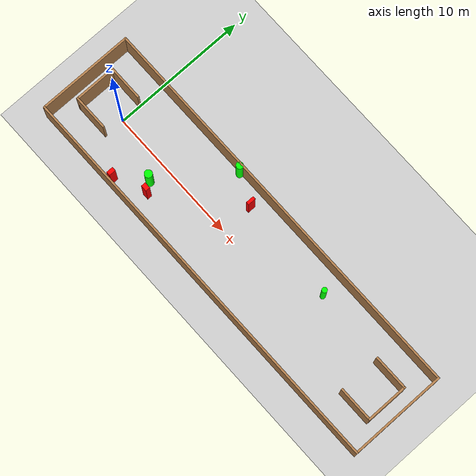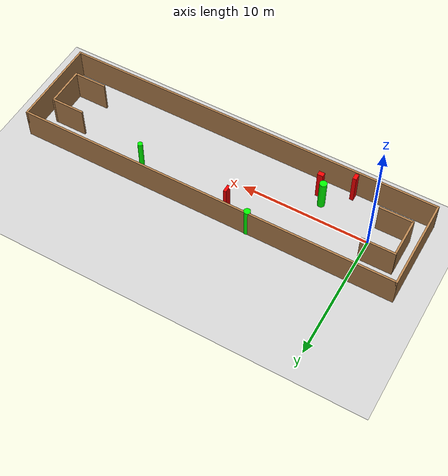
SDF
<sdf version="1.7">
 <world name="default">
  <light name="sun" type="directional">
   <pose>0 0 10 0 -0 0</pose>
   <diffuse>0.8 0.8 0.8 1</diffuse>
   <specular>0.2 0.2 0.2 1</specular>
   <attenuation>
    <range>1000</range>
    <constant>0.9</constant>
    <linear>0.01</linear>
    <quadratic>0.001</quadratic>
   </attenuation>
   <direction>-0.5 0.1 -0.9</direction>
   <spot><inner_angle>0</inner_angle><outer_angle>0</outer_angle><falloff>0</falloff></spot>
  </light>
  <model name="ground_plane">
   <static>1</static>
   <link name="link">
    <collision name="collision">
     <geometry><plane><normal>0 0 1</normal><size>100 100</size></plane></geometry>
     <surface>
      <contact><collide_bitmask>65535</collide_bitmask></contact>
      <friction><ode><mu>100</mu><mu2>50</mu2></ode></friction>
     </surface>
    </collision>
    <visual name="visual">
     <cast_shadows>0</cast_shadows>
     <geometry><plane><normal>0 0 1</normal><size>100 100</size></plane></geometry>
     <material>
      <script><uri>file://media/materials/scripts/gazebo.material</uri><name>Gazebo/Grey</name></script>
     </material>
    </visual>
   </link>
  </model>
  <gravity>0 0 -9.8</gravity>
  <magnetic_field>6e-06 2.3e-05 -4.2e-05</magnetic_field>
  <atmosphere type="adiabatic"/>
  <physics type="ode">
   <max_step_size>0.001</max_step_size>
   <real_time_factor>1</real_time_factor>
   <real_time_update_rate>1000</real_time_update_rate>
  </physics>
  <scene><ambient>0.4 0.4 0.4 1</ambient><background>0.7 0.7 0.7 1</background><shadows>1</shadows></scene>
  <spherical_coordinates>
   <surface_model>EARTH_WGS84</surface_model>
   <latitude_deg>0</latitude_deg>
   <longitude_deg>0</longitude_deg>
   <elevation>0</elevation>
   <heading_deg>0</heading_deg>
  </spherical_coordinates>
  <model name="my_base_walls">
   <link name="Wall_0">
    <collision name="Wall_0_Collision">
     <geometry><box><size>7.15 0.15 2.5</size></box></geometry>
     <pose>0 0 1.25 0 -0 0</pose>
    </collision>
    <visual name="Wall_0_Visual">
     <pose>0 0 1.25 0 -0 0</pose>
     <geometry><box><size>7.15 0.15 2.5</size></box></geometry>
     <material>
      <script><uri>file://media/materials/scripts/gazebo.material</uri><name>Gazebo/Wood</name></script>
      <ambient>1 1 1 1</ambient>
     </material>
     <meta><layer>0</layer></meta>
    </visual>
    <pose>-15 0 0 0 -0 1.5708</pose>
   </link>
   <link name="Wall_10">
    <collision name="Wall_10_Collision">
     <geometry><box><size>2.65 0.15 2.5</size></box></geometry>
     <pose>0 0 1.25 0 -0 0</pose>
    </collision>
    <visual name="Wall_10_Visual">
     <pose>0 0 1.25 0 -0 0</pose>
     <geometry><box><size>2.65 0.15 2.5</size></box></geometry>
     <material>
      <script><uri>file://media/materials/scripts/gazebo.material</uri><name>Gazebo/Wood</name></script>
      <ambient>1 1 1 1</ambient>
     </material>
     <meta><layer>0</layer></meta>
    </visual>
    <pose>-12.75 -1.5 0 0 -0 0</pose>
   </link>
   <link name="Wall_12">
    <collision name="Wall_12_Collision">
     <geometry><box><size>2.65 0.15 2.5</size></box></geometry>
     <pose>0 0 1.25 0 -0 0</pose>
    </collision>
    <visual name="Wall_12_Visual">
     <pose>0 0 1.25 0 -0 0</pose>
     <geometry><box><size>2.65 0.15 2.5</size></box></geometry>
     <material>
      <script><uri>file://media/materials/scripts/gazebo.material</uri><name>Gazebo/Wood</name></script>
      <ambient>1 1 1 1</ambient>
     </material>
     <meta><layer>0</layer></meta>
    </visual>
    <pose>-12.75 1.5 0 0 -0 0</pose>
   </link>
   <link name="Wall_14">
    <collision name="Wall_14_Collision">
     <geometry><box><size>3.15 0.15 2.5</size></box></geometry>
     <pose>0 0 1.25 0 -0 0</pose>
    </collision>
    <visual name="Wall_14_Visual">
     <pose>0 0 1.25 0 -0 0</pose>
     <geometry><box><size>3.15 0.15 2.5</size></box></geometry>
     <material>
      <script><uri>file://media/materials/scripts/gazebo.material</uri><name>Gazebo/Wood</name></script>
      <ambient>1 1 1 1</ambient>
     </material>
     <meta><layer>0</layer></meta>
    </visual>
    <pose>14 0 0 0 -0 -1.5708</pose>
   </link>
   <link name="Wall_15">
    <collision name="Wall_15_Collision">
     <geometry><box><size>2.65 0.15 2.5</size></box></geometry>
     <pose>0 0 1.25 0 -0 0</pose>
    </collision>
    <visual name="Wall_15_Visual">
     <pose>0 0 1.25 0 -0 0</pose>
     <geometry><box><size>2.65 0.15 2.5</size></box></geometry>
     <material>
      <script><uri>file://media/materials/scripts/gazebo.material</uri><name>Gazebo/Wood</name></script>
      <ambient>1 1 1 1</ambient>
     </material>
     <meta><layer>0</layer></meta>
    </visual>
    <pose>12.75 -1.5 0 0 -0 3.14159</pose>
   </link>
   <link name="Wall_17">
    <collision name="Wall_17_Collision">
     <geometry><box><size>2.65 0.15 2.5</size></box></geometry>
     <pose>0 0 1.25 0 -0 0</pose>
    </collision>
    <visual name="Wall_17_Visual">
     <pose>0 0 1.25 0 -0 0</pose>
     <geometry><box><size>2.65 0.15 2.5</size></box></geometry>
     <material>
      <script><uri>file://media/materials/scripts/gazebo.material</uri><name>Gazebo/Wood</name></script>
      <ambient>1 1 1 1</ambient>
     </material>
     <meta><layer>0</layer></meta>
    </visual>
    <pose>12.75 1.5 0 0 -0 3.14159</pose>
   </link>
   <link name="Wall_2">
    <collision name="Wall_2_Collision">
     <geometry><box><size>30.15 0.15 2.5</size></box></geometry>
     <pose>0 0 1.25 0 -0 0</pose>
    </collision>
    <visual name="Wall_2_Visual">
     <pose>0 0 1.25 0 -0 0</pose>
     <geometry><box><size>30.15 0.15 2.5</size></box></geometry>
     <material>
      <script><uri>file://media/materials/scripts/gazebo.material</uri><name>Gazebo/Wood</name></script>
      <ambient>1 1 1 1</ambient>
     </material>
     <meta><layer>0</layer></meta>
    </visual>
    <pose>-0 -3.5 0 0 -0 0</pose>
   </link>
   <link name="Wall_4">
    <collision name="Wall_4_Collision">
     <geometry><box><size>30.15 0.15 2.5</size></box></geometry>
     <pose>0 0 1.25 0 -0 0</pose>
    </collision>
    <visual name="Wall_4_Visual">
     <pose>0 0 1.25 0 -0 0</pose>
     <geometry><box><size>30.15 0.15 2.5</size></box></geometry>
     <material>
      <script><uri>file://media/materials/scripts/gazebo.material</uri><name>Gazebo/Wood</name></script>
      <ambient>1 1 1 1</ambient>
     </material>
     <meta><layer>0</layer></meta>
    </visual>
    <pose>-0 3.5 0 0 -0 0</pose>
   </link>
   <link name="Wall_6">
    <collision name="Wall_6_Collision">
     <geometry><box><size>7.15 0.15 2.5</size></box></geometry>
     <pose>0 0 1.25 0 -0 0</pose>
    </collision>
    <visual name="Wall_6_Visual">
     <pose>0 0 1.25 0 -0 0</pose>
     <geometry><box><size>7.15 0.15 2.5</size></box></geometry>
     <material>
      <script><uri>file://media/materials/scripts/gazebo.material</uri><name>Gazebo/Wood</name></script>
      <ambient>1 1 1 1</ambient>
     </material>
     <meta><layer>0</layer></meta>
    </visual>
    <pose>15 0 0 0 -0 -1.5708</pose>
   </link>
   <link name="Wall_9">
    <collision name="Wall_9_Collision">
     <geometry><box><size>3.15 0.15 2.5</size></box></geometry>
     <pose>0 0 1.25 0 -0 0</pose>
    </collision>
    <visual name="Wall_9_Visual">
     <pose>0 0 1.25 0 -0 0</pose>
     <geometry><box><size>3.15 0.15 2.5</size></box></geometry>
     <material>
      <script><uri>file://media/materials/scripts/gazebo.material</uri><name>Gazebo/Wood</name></script>
      <ambient>1 1 1 1</ambient>
     </material>
     <meta><layer>0</layer></meta>
    </visual>
    <pose>-14 0 0 0 -0 -1.5708</pose>
   </link>
   <static>1</static>
   <pose>11.5 0 0 0 -0 0</pose>
  </model>
  <model name="cylinder1">
   <static>1</static>
   <link name="link">
    <inertial>
     <mass>1</mass>
     <inertia><ixx>0.5</ixx><ixy>0</ixy><ixz>0</ixz><iyy>0.5</iyy><iyz>0</iyz><izz>1</izz></inertia>
    </inertial>
    <collision name="collision">
     <geometry><cylinder><radius>0.28290193105224515</radius><length>2.5</length></cylinder></geometry>
    </collision>
    <visual name="visual">
     <geometry><cylinder><radius>0.28290193105224515</radius><length>2.5</length></cylinder></geometry>
     <material>
      <ambient>0 1 0 1</ambient>
      <diffuse>0 1 0 1</diffuse>
      <specular>0.1 0.1 0.1 1</specular>
      <emissive>0 0 0 0</emissive>
     </material>
    </visual>
   </link>
   <pose>4.354629668259022 -1.4015243456531614 1.25 0 0 0</pose>
  </model>
  <model name="cylinder2">
   <static>1</static>
   <link name="link">
    <inertial>
     <mass>1</mass>
     <inertia><ixx>0.5</ixx><ixy>0</ixy><ixz>0</ixz><iyy>0.5</iyy><iyz>0</iyz><izz>1</izz></inertia>
    </inertial>
    <collision name="collision">
     <geometry><cylinder><radius>0.25590969730455754</radius><length>2.5</length></cylinder></geometry>
    </collision>
    <visual name="visual">
     <geometry><cylinder><radius>0.25590969730455754</radius><length>2.5</length></cylinder></geometry>
     <material>
      <ambient>0 1 0 1</ambient>
      <diffuse>0 1 0 1</diffuse>
      <specular>0.1 0.1 0.1 1</specular>
      <emissive>0 0 0 0</emissive>
     </material>
    </visual>
   </link>
   <pose>7.881815212679927 3.363075566194423 1.25 0 0 0</pose>
  </model>
  <model name="cylinder3">
   <static>1</static>
   <link name="link">
    <inertial>
     <mass>1</mass>
     <inertia><ixx>0.5</ixx><ixy>0</ixy><ixz>0</ixz><iyy>0.5</iyy><iyz>0</iyz><izz>1</izz></inertia>
    </inertial>
    <collision name="collision">
     <geometry><cylinder><radius>0.1922560014470821</radius><length>2.5</length></cylinder></geometry>
    </collision>
    <visual name="visual">
     <geometry><cylinder><radius>0.1922560014470821</radius><length>2.5</length></cylinder></geometry>
     <material>
      <ambient>0 1 0 1</ambient>
      <diffuse>0 1 0 1</diffuse>
      <specular>0.1 0.1 0.1 1</specular>
      <emissive>0 0 0 0</emissive>
     </material>
    </visual>
   </link>
   <pose>17.55738732418338 1.9419285447713248 1.25 0 0 0</pose>
  </model>
  <model name="box1">
   <static>1</static>
   <link name="link">
    <inertial>
     <mass>1</mass>
     <inertia><ixx>0.083</ixx><ixy>0</ixy><ixz>0</ixz><iyy>0.083</iyy><iyz>0</iyz><izz>0.083</izz></inertia>
    </inertial>
    <collision name="collision">
     <geometry><box><size>0.4542216997693301 0.3422900437609061 2.5</size></box></geometry>
    </collision>
    <visual name="visual">
     <geometry><box><size>0.4542216997693301 0.3422900437609061 2.5</size></box></geometry>
     <material>
      <ambient>1 0 0 1</ambient>
      <diffuse>1 0 0 1</diffuse>
      <specular>0.1 0.1 0.1 1</specular>
      <emissive>0 0 0 0</emissive>
     </material>
    </visual>
    <sensor name="my_contact" type="contact">
     <contact><collision>box_collision</collision><topic>__default_topic__</topic></contact>
    </sensor>
   </link>
   <pose>4.8871524258508 -2.1021415357012123 1.25 0 0 0</pose>
  </model>
  <model name="box2">
   <static>1</static>
   <link name="link">
    <inertial>
     <mass>1</mass>
     <inertia><ixx>0.083</ixx><ixy>0</ixy><ixz>0</ixz><iyy>0.083</iyy><iyz>0</iyz><izz>0.083</izz></inertia>
    </inertial>
    <collision name="collision">
     <geometry><box><size>0.293598301010438 0.5053411661362 2.5</size></box></geometry>
    </collision>
    <visual name="visual">
     <geometry><box><size>0.293598301010438 0.5053411661362 2.5</size></box></geometry>
     <material>
      <ambient>1 0 0 1</ambient>
      <diffuse>1 0 0 1</diffuse>
      <specular>0.1 0.1 0.1 1</specular>
      <emissive>0 0 0 0</emissive>
     </material>
    </visual>
    <sensor name="my_contact" type="contact">
     <contact><collision>box_collision</collision><topic>__default_topic__</topic></contact>
    </sensor>
   </link>
   <pose>2.625862500948225 -3.090861517487859 1.25 0 0 0</pose>
  </model>
  <model name="box3">
   <static>1</static>
   <link name="link">
    <inertial>
     <mass>1</mass>
     <inertia><ixx>0.083</ixx><ixy>0</ixy><ixz>0</ixz><iyy>0.083</iyy><iyz>0</iyz><izz>0.083</izz></inertia>
    </inertial>
    <collision name="collision">
     <geometry><box><size>0.219622126068901 0.588396710909736 2.5</size></box></geometry>
    </collision>
    <visual name="visual">
     <geometry><box><size>0.219622126068901 0.588396710909736 2.5</size></box></geometry>
     <material>
      <ambient>1 0 0 1</ambient>
      <diffuse>1 0 0 1</diffuse>
      <specular>0.1 0.1 0.1 1</specular>
      <emissive>0 0 0 0</emissive>
     </material>
    </visual>
    <sensor name="my_contact" type="contact">
     <contact><collision>box_collision</collision><topic>__default_topic__</topic></contact>
    </sensor>
   </link>
   <pose>10.091617946367972 2.3446383605247556 1.25 0 0 0</pose>
  </model>
 </world>
</sdf>
